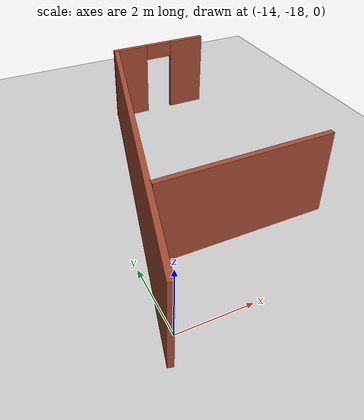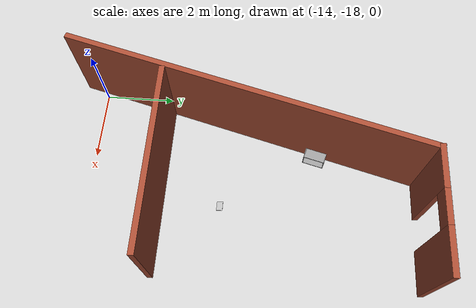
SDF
<sdf version="1.6">
 <world name="default">
  <model name="ground_plane">
   <static>1</static>
   <link name="link">
    <collision name="collision">
     <geometry><plane><normal>0 0 1</normal><size>100 100</size></plane></geometry>
     <surface><friction><ode><mu>100</mu><mu2>50</mu2></ode></friction></surface>
    </collision>
    <visual name="visual">
     <cast_shadows>0</cast_shadows>
     <geometry><plane><normal>0 0 1</normal><size>100 100</size></plane></geometry>
     <material>
      <script><uri>file://media/materials/scripts/gazebo.material</uri><name>Gazebo/Grey</name></script>
     </material>
    </visual>
   </link>
  </model>
  <model name="vital">
   <pose>1.2398 -2.19799 0 0 -0 0</pose>
   <link name="Wall_109">
    <collision name="Wall_109_Collision">
     <geometry><box><size>10.25 0.15 2.5</size></box></geometry>
     <pose>0 0 1.25 0 -0 0</pose>
    </collision>
    <visual name="Wall_109_Visual">
     <pose>0 0 1.25 0 -0 0</pose>
     <geometry><box><size>10.25 0.15 2.5</size></box></geometry>
     <material>
      <script><uri>file://media/materials/scripts/gazebo.material</uri><name>Gazebo/Bricks</name></script>
      <ambient>1 1 1 1</ambient>
     </material>
    </visual>
    <pose>-14.2925 -11.5005 0 0 0 -1.8326</pose>
   </link>
   <link name="Wall_112">
    <pose>-11.4355 -6.6226 0 0 -0 0</pose>
    <visual name="Wall_112_Visual_0">
     <pose>-1.04973 0 1.25 0 -0 0</pose>
     <geometry><box><size>1.15054 0.15 2.5</size></box></geometry>
     <material>
      <script><uri>file://media/materials/scripts/gazebo.material</uri><name>Gazebo/Bricks</name></script>
      <ambient>1 1 1 1</ambient>
     </material>
    </visual>
    <collision name="Wall_112_Collision_0">
     <geometry><box><size>1.15054 0.15 2.5</size></box></geometry>
     <pose>-1.04973 0 1.25 0 -0 0</pose>
    </collision>
    <visual name="Wall_112_Visual_1">
     <pose>1.02527 0 1.25 0 -0 0</pose>
     <geometry><box><size>1.19946 0.15 2.5</size></box></geometry>
     <material>
      <script><uri>file://media/materials/scripts/gazebo.material</uri><name>Gazebo/Bricks</name></script>
      <ambient>1 1 1 1</ambient>
     </material>
    </visual>
    <collision name="Wall_112_Collision_1">
     <geometry><box><size>1.19946 0.15 2.5</size></box></geometry>
     <pose>1.02527 0 1.25 0 -0 0</pose>
    </collision>
    <visual name="Wall_112_Visual_2">
     <pose>-0.024462 0 2.25 0 -0 0</pose>
     <geometry><box><size>0.9 0.15 0.5</size></box></geometry>
     <material>
      <script><uri>file://media/materials/scripts/gazebo.material</uri><name>Gazebo/Bricks</name></script>
      <ambient>1 1 1 1</ambient>
     </material>
    </visual>
    <collision name="Wall_112_Collision_2">
     <geometry><box><size>0.9 0.15 0.5</size></box></geometry>
     <pose>-0.024462 0 2.25 0 -0 0</pose>
    </collision>
   </link>
   <link name="Wall_114">
    <collision name="Wall_114_Collision">
     <geometry><box><size>5 0.15 2.5</size></box></geometry>
     <pose>0 0 1.25 0 -0 0</pose>
    </collision>
    <visual name="Wall_114_Visual">
     <pose>0 0 1.25 0 -0 0</pose>
     <geometry><box><size>5 0.15 2.5</size></box></geometry>
     <material>
      <script><uri>file://media/materials/scripts/gazebo.material</uri><name>Gazebo/Bricks</name></script>
      <ambient>1 1 1 1</ambient>
     </material>
    </visual>
    <pose>-12.3105 -13.7226 0 0 -0 3.14159</pose>
   </link>
   <static>1</static>
  </model>
  <model name="Wall_Cabinet_24x15W">
   <link name="Wall_41">
    <pose>0 0 0.01 0 -0 0</pose>
    <inertial>
     <mass>1.4983</mass>
     <inertia><ixx>0.011</ixx><iyy>0.0571</iyy><izz>0.0462</izz><ixy>0</ixy><ixz>0</ixz><iyz>0</iyz></inertia>
    </inertial>
    <collision name="Wall_41_Collision"><geometry><box><size>0.608 0.296 0.02</size></box></geometry></collision>
    <visual name="Wall_41_Visual">
     <geometry><box><size>0.608 0.296 0.02</size></box></geometry>
     <material>
      <script><uri>file://media/materials/scripts/gazebo.material</uri><name>Gazebo/Grey</name></script>
      <ambient>1 1 1 1</ambient>
     </material>
    </visual>
    <pose>0.000184 0.181953 0 0 -0 0</pose>
   </link>
   <joint name="41_43" type="fixed">
    <pose>-0.304 0 0 0 -0 0</pose>
    <parent>Wall_43</parent>
    <child>Wall_41</child>
    <axis>
     <xyz>0 0 1</xyz>
     <use_parent_model_frame>0</use_parent_model_frame>
     <limit><lower>-1e+16</lower><upper>1e+16</upper></limit>
    </axis>
   </joint>
   <joint name="41_45" type="fixed">
    <pose>0.304 0 0 0 -0 0</pose>
    <parent>Wall_45</parent>
    <child>Wall_41</child>
    <axis>
     <xyz>0 0 1</xyz>
     <use_parent_model_frame>0</use_parent_model_frame>
     <limit><lower>-1e+16</lower><upper>1e+16</upper></limit>
    </axis>
   </joint>
   <joint name="41_49" type="fixed">
    <pose>0 -0.148 0 0 -0 0</pose>
    <parent>Wall_49</parent>
    <child>Wall_41</child>
    <axis>
     <xyz>0 0 1</xyz>
     <use_parent_model_frame>0</use_parent_model_frame>
     <limit><lower>-1e+16</lower><upper>1e+16</upper></limit>
    </axis>
   </joint>
   <link name="Wall_43">
    <pose>-0.294 0 0.192 0 -0 0</pose>
    <inertial>
     <mass>0.9463</mass>
     <inertia><ixx>0.0069</ixx><iyy>0.0185</iyy><izz>0.0117</izz><ixy>0</ixy><ixz>0</ixz><iyz>0</iyz></inertia>
    </inertial>
    <collision name="Wall_43_Collision"><geometry><box><size>0.02 0.296 0.384</size></box></geometry></collision>
    <visual name="Wall_43_Visual">
     <geometry><box><size>0.02 0.296 0.384</size></box></geometry>
     <material>
      <script><uri>file://media/materials/scripts/gazebo.material</uri><name>Gazebo/Grey</name></script>
      <ambient>1 1 1 1</ambient>
     </material>
    </visual>
   </link>
   <link name="Wall_45">
    <pose>0.294 0 0.192 0 -0 0</pose>
    <inertial>
     <mass>0.9463</mass>
     <inertia><ixx>0.0069</ixx><iyy>0.0185</iyy><izz>0.0117</izz><ixy>0</ixy><ixz>0</ixz><iyz>0</iyz></inertia>
    </inertial>
    <collision name="Wall_45_Collision"><geometry><box><size>0.02 0.296 0.384</size></box></geometry></collision>
    <visual name="Wall_45_Visual">
     <geometry><box><size>0.02 0.296 0.384</size></box></geometry>
     <material>
      <script><uri>file://media/materials/scripts/gazebo.material</uri><name>Gazebo/Grey</name></script>
      <ambient>1 1 1 1</ambient>
     </material>
    </visual>
   </link>
   <link name="Wall_47">
    <pose>0 0 0.374 0 -0 0</pose>
    <inertial>
     <mass>1.4983</mass>
     <inertia><ixx>0.011</ixx><iyy>0.0571</iyy><izz>0.0462</izz><ixy>0</ixy><ixz>0</ixz><iyz>0</iyz></inertia>
    </inertial>
    <collision name="Wall_47_Collision"><geometry><box><size>0.608 0.296 0.02</size></box></geometry></collision>
    <visual name="Wall_47_Visual">
     <geometry><box><size>0.608 0.296 0.02</size></box></geometry>
     <material>
      <script><uri>file://media/materials/scripts/gazebo.material</uri><name>Gazebo/Grey</name></script>
      <ambient>1 1 1 1</ambient>
     </material>
    </visual>
   </link>
   <joint name="47_43" type="fixed">
    <pose>-0.304 0 0 0 -0 0</pose>
    <parent>Wall_43</parent>
    <child>Wall_47</child>
    <axis>
     <xyz>0 0 1</xyz>
     <use_parent_model_frame>0</use_parent_model_frame>
     <limit><lower>-1e+16</lower><upper>1e+16</upper></limit>
    </axis>
   </joint>
   <joint name="47_45" type="fixed">
    <pose>0.304 0 0 0 -0 0</pose>
    <parent>Wall_45</parent>
    <child>Wall_47</child>
    <axis>
     <xyz>0 0 1</xyz>
     <use_parent_model_frame>0</use_parent_model_frame>
     <limit><lower>-1e+16</lower><upper>1e+16</upper></limit>
    </axis>
   </joint>
   <joint name="47_49" type="fixed">
    <pose>0 -0.148 0 0 -0 0</pose>
    <parent>Wall_49</parent>
    <child>Wall_47</child>
    <axis>
     <xyz>0 0 1</xyz>
     <use_parent_model_frame>0</use_parent_model_frame>
     <limit><lower>-1e+16</lower><upper>1e+16</upper></limit>
    </axis>
   </joint>
   <link name="Wall_49">
    <pose>0 -0.138 0.19 0 -0 0</pose>
    <inertial>
     <mass>1.9108</mass>
     <inertia><ixx>0.0231</ixx><iyy>0.0582</iyy><izz>0.0811</izz><ixy>0</ixy><ixz>0</ixz><iyz>0</iyz></inertia>
    </inertial>
    <collision name="Wall_49_Collision"><geometry><box><size>0.604 0.02 0.38</size></box></geometry></collision>
    <visual name="Wall_49_Visual">
     <geometry><box><size>0.604 0.02 0.38</size></box></geometry>
     <material>
      <script><uri>file://media/materials/scripts/gazebo.material</uri><name>Gazebo/Grey</name></script>
      <ambient>1 1 1 1</ambient>
     </material>
    </visual>
   </link>
   <joint name="49_43" type="fixed">
    <pose>-0.302 0 0 0 -0 0</pose>
    <parent>Wall_41</parent>
    <child>Wall_49</child>
    <axis>
     <xyz>0 1 0</xyz>
     <use_parent_model_frame>0</use_parent_model_frame>
     <limit><lower>-1e+16</lower><upper>1e+16</upper></limit>
    </axis>
   </joint>
   <joint name="49_45" type="fixed">
    <pose>0.302 0 0 0 -0 0</pose>
    <parent>Wall_45</parent>
    <child>Wall_49</child>
    <axis>
     <xyz>0 1 0</xyz>
     <use_parent_model_frame>0</use_parent_model_frame>
     <limit><lower>-1e+16</lower><upper>1e+16</upper></limit>
    </axis>
   </joint>
   <static>1</static>
   <pose>-12.2795 -11.6525 -0.007625 0.001501 -0.000472 -1.82594</pose>
  </model>
  <model name="book_18">
   <link name="cover">
    <pose>0 -0.000108 0.015405 0 -0 0</pose>
    <visual name="visual">
     <geometry><box><size>0.245 0.16 0.03</size></box></geometry>
     <material>
      <script>
       <uri>model://book_18/materials/scripts</uri>
       <uri>model://book_18/materials/textures</uri>
       <name>book_18</name>
      </script>
     </material>
    </visual>
    <collision name="collision"><geometry><box><size>0.245 0.16 0.03</size></box></geometry></collision>
   </link>
   <link name="page">
    <pose>0 0.000608 0.015405 0 -0 0</pose>
    <visual name="visual">
     <geometry><box><size>0.24502 0.15862 0.028</size></box></geometry>
     <material>
      <lighting>1</lighting>
      <ambient>1 1 1 1</ambient>
      <diffuse>1 1 1 1</diffuse>
      <specular>0.01 0.01 0.01 1</specular>
      <emissive>0 0 0 1</emissive>
      <shader type="vertex"><normal_map>__default__</normal_map></shader>
     </material>
    </visual>
    <collision name="collision"><geometry><box><size>0.245 0.16 0.03</size></box></geometry></collision>
   </link>
   <static>1</static>
   <pose>-10.4435 -14.2056 0.720745 0 -0 0</pose>
  </model>
 </world>
</sdf>
